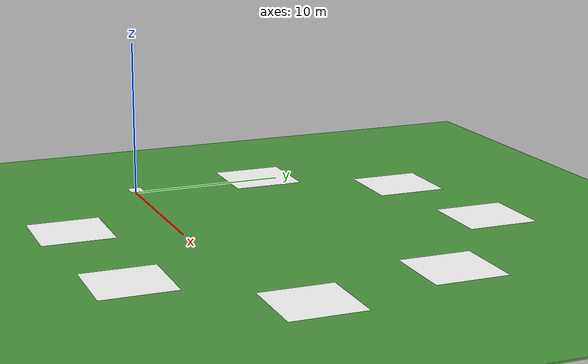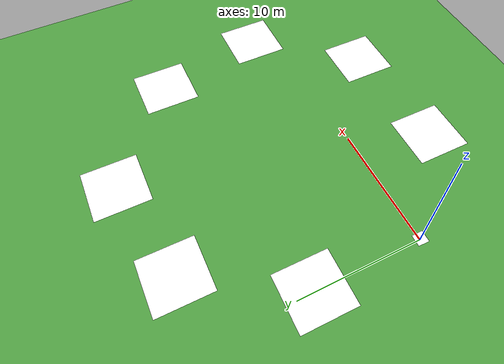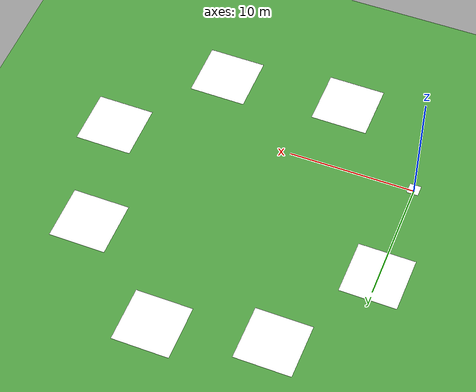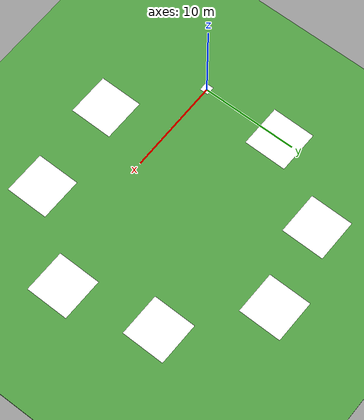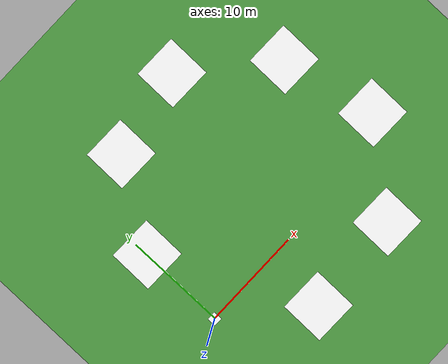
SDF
<sdf version="1.7">
 <world name="default">
  <light name="sun" type="directional">
   <pose>0 0 10 0 -0 0</pose>
   <diffuse>0.8 0.8 0.8 1</diffuse>
   <specular>0.2 0.2 0.2 1</specular>
   <attenuation>
    <range>1000</range>
    <constant>0.9</constant>
    <linear>0.01</linear>
    <quadratic>0.001</quadratic>
   </attenuation>
   <direction>-0.5 0.1 -0.9</direction>
   <spot><inner_angle>0</inner_angle><outer_angle>0</outer_angle><falloff>0</falloff></spot>
  </light>
  <gravity>0 0 -9.8</gravity>
  <magnetic_field>6e-06 2.3e-05 -4.2e-05</magnetic_field>
  <atmosphere type="adiabatic"/>
  <physics name="default_physics" default="0" type="ode">
   <max_step_size>0.004</max_step_size>
   <real_time_factor>1</real_time_factor>
   <real_time_update_rate>250</real_time_update_rate>
  </physics>
  <scene><ambient>0.4 0.4 0.4 1</ambient><background>0.7 0.7 0.7 1</background><shadows>1</shadows></scene>
  <spherical_coordinates>
   <surface_model>EARTH_WGS84</surface_model>
   <latitude_deg>0</latitude_deg>
   <longitude_deg>0</longitude_deg>
   <elevation>0</elevation>
   <heading_deg>0</heading_deg>
  </spherical_coordinates>
  <model name="grass_plane">
   <static>1</static>
   <link name="link">
    <collision name="collision"><geometry><box><size>50 50 0.1</size></box></geometry></collision>
    <visual name="visual">
     <cast_shadows>0</cast_shadows>
     <geometry><box><size>220 220 0.1</size></box></geometry>
     <material>
      <script>
       <uri>model://grass_plane/materials/scripts</uri>
       <uri>model://grass_plane/materials/textures</uri>
       <name>vrc/grass</name>
      </script>
     </material>
    </visual>
   </link>
   <pose>0.882389 -0.022419 0 0 -0 0</pose>
  </model>
  <model name="conejo_visual_marker1">
   <link name="marker1">
    <visual name="visual">
     <geometry><box><size>0.9 0.9 1e-05</size></box></geometry>
     <material>
      <script>
       <uri>model://conejo_visual_marker1/materials/scripts</uri>
       <uri>model://conejo_visual_marker1/materials/textures</uri>
       <name>ArucoVisualMarker7/Marker</name>
      </script>
      <ambient>1 1 1 1</ambient>
      <diffuse>1 1 1 1</diffuse>
      <specular>0 0 0 1</specular>
      <emissive>1 1 1 0</emissive>
      <shader type="vertex"><normal_map>__default__</normal_map></shader>
     </material>
    </visual>
    <collision name="collision"><geometry><box><size>0.1778 0.1778 1e-05</size></box></geometry></collision>
   </link>
   <static>1</static>
   <pose>0 0 0.2 0 0 -0.01</pose>
  </model>
  <model name="conejo_visual_marker1_clone_0_clone">
   <link name="marker1">
    <visual name="visual">
     <geometry><box><size>4.5 4.5 5e-05</size></box></geometry>
     <material>
      <script>
       <uri>model://conejo_visual_marker1/materials/scripts</uri>
       <uri>model://conejo_visual_marker1/materials/textures</uri>
       <name>ArucoVisualMarker7/Marker</name>
      </script>
      <ambient>1 1 1 1</ambient>
      <diffuse>1 1 1 1</diffuse>
      <specular>0 0 0 1</specular>
      <emissive>1 1 1 0</emissive>
      <shader type="vertex"><normal_map>__default__</normal_map></shader>
     </material>
    </visual>
    <collision name="collision"><geometry><box><size>0.889 0.889 5e-05</size></box></geometry></collision>
   </link>
   <static>1</static>
   <pose>0.083671 8.60388 0.2 0 0 -0.01</pose>
  </model>
  <model name="conejo_visual_marker1_clone_1">
   <link name="marker1">
    <visual name="visual">
     <geometry><box><size>4.5 4.5 5e-05</size></box></geometry>
     <material>
      <script>
       <uri>model://conejo_visual_marker2/materials/scripts</uri>
       <uri>model://conejo_visual_marker2/materials/textures</uri>
       <name>ArucoVisualMarker7/Marker</name>
      </script>
      <ambient>1 1 1 1</ambient>
      <diffuse>1 1 1 1</diffuse>
      <specular>0 0 0 1</specular>
      <emissive>1 1 1 0</emissive>
      <shader type="vertex"><normal_map>__default__</normal_map></shader>
     </material>
    </visual>
    <collision name="collision"><geometry><box><size>0.889 0.889 5e-05</size></box></geometry></collision>
   </link>
   <static>1</static>
   <pose>7.44114 -6.18781 0.2 0 0 -0.01</pose>
  </model>
  <model name="conejo_visual_marker1_clone_1_clone">
   <link name="marker1">
    <visual name="visual">
     <geometry><box><size>4.5 4.5 5e-05</size></box></geometry>
     <material>
      <script>
       <uri>model://conejo_visual_marker3/materials/scripts</uri>
       <uri>model://conejo_visual_marker3/materials/textures</uri>
       <name>ArucoVisualMarker7/Marker</name>
      </script>
      <ambient>1 1 1 1</ambient>
      <diffuse>1 1 1 1</diffuse>
      <specular>0 0 0 1</specular>
      <emissive>1 1 1 0</emissive>
      <shader type="vertex"><normal_map>__default__</normal_map></shader>
     </material>
    </visual>
    <collision name="collision"><geometry><box><size>0.889 0.889 5e-05</size></box></geometry></collision>
   </link>
   <static>1</static>
   <pose>17.4418 -5.49575 0.2 0 0 -0.01</pose>
  </model>
  <model name="conejo_visual_marker1_clone_1_clone_0">
   <link name="marker1">
    <visual name="visual">
     <geometry><box><size>4.5 4.5 5e-05</size></box></geometry>
     <material>
      <script>
       <uri>model://conejo_visual_marker4/materials/scripts</uri>
       <uri>model://conejo_visual_marker4/materials/textures</uri>
       <name>ArucoVisualMarker7/Marker</name>
      </script>
      <ambient>1 1 1 1</ambient>
      <diffuse>1 1 1 1</diffuse>
      <specular>0 0 0 1</specular>
      <emissive>1 1 1 0</emissive>
      <shader type="vertex"><normal_map>__default__</normal_map></shader>
     </material>
    </visual>
    <collision name="collision"><geometry><box><size>0.889 0.889 5e-05</size></box></geometry></collision>
   </link>
   <static>1</static>
   <pose>23.8768 2.37045 0.2 0 0 -0.01</pose>
  </model>
  <model name="conejo_visual_marker1_clone_1_clone_1">
   <link name="marker1">
    <visual name="visual">
     <geometry><box><size>4.5 4.5 5e-05</size></box></geometry>
     <material>
      <script>
       <uri>model://conejo_visual_marker5/materials/scripts</uri>
       <uri>model://conejo_visual_marker5/materials/textures</uri>
       <name>ArucoVisualMarker7/Marker</name>
      </script>
      <ambient>1 1 1 1</ambient>
      <diffuse>1 1 1 1</diffuse>
      <specular>0 0 0 1</specular>
      <emissive>1 1 1 0</emissive>
      <shader type="vertex"><normal_map>__default__</normal_map></shader>
     </material>
    </visual>
    <collision name="collision"><geometry><box><size>0.889 0.889 5e-05</size></box></geometry></collision>
   </link>
   <static>1</static>
   <pose>21.8779 11.6657 0.2 0 0 -0.01</pose>
  </model>
  <model name="conejo_visual_marker1_clone_1_clone_2">
   <link name="marker1">
    <visual name="visual">
     <geometry><box><size>4.5 4.5 5e-05</size></box></geometry>
     <material>
      <script>
       <uri>model://conejo_visual_marker6/materials/scripts</uri>
       <uri>model://conejo_visual_marker6/materials/textures</uri>
       <name>ArucoVisualMarker7/Marker</name>
      </script>
      <ambient>1 1 1 1</ambient>
      <diffuse>1 1 1 1</diffuse>
      <specular>0 0 0 1</specular>
      <emissive>1 1 1 0</emissive>
      <shader type="vertex"><normal_map>__default__</normal_map></shader>
     </material>
    </visual>
    <collision name="collision"><geometry><box><size>0.889 0.889 5e-05</size></box></geometry></collision>
   </link>
   <static>1</static>
   <pose>13.88 18.3942 0.2 0 0 -0.01</pose>
  </model>
  <model name="conejo_visual_marker1_clone_1_clone_3">
   <link name="marker1">
    <visual name="visual">
     <geometry><box><size>4.5 4.5 5e-05</size></box></geometry>
     <material>
      <script>
       <uri>model://conejo_visual_marker7/materials/scripts</uri>
       <uri>model://conejo_visual_marker7/materials/textures</uri>
       <name>ArucoVisualMarker7/Marker</name>
      </script>
      <ambient>1 1 1 1</ambient>
      <diffuse>1 1 1 1</diffuse>
      <specular>0 0 0 1</specular>
      <emissive>1 1 1 0</emissive>
      <shader type="vertex"><normal_map>__default__</normal_map></shader>
     </material>
    </visual>
    <collision name="collision"><geometry><box><size>0.889 0.889 5e-05</size></box></geometry></collision>
   </link>
   <static>1</static>
   <pose>5.22262 16.7051 0.2 0 0 -0.01</pose>
  </model>
 </world>
</sdf>
